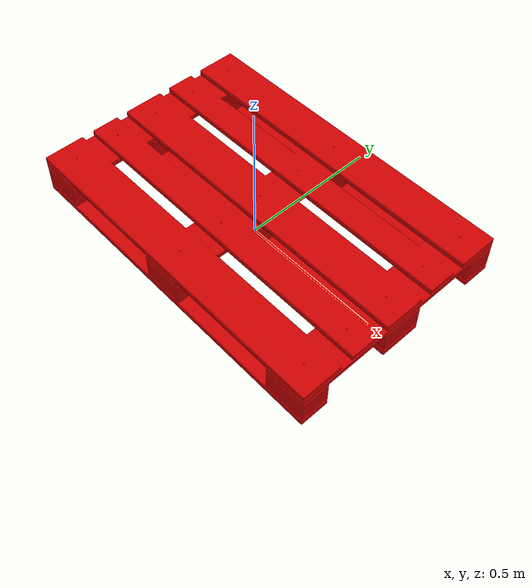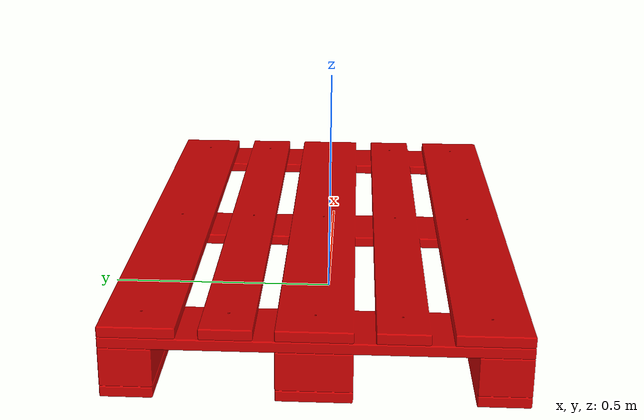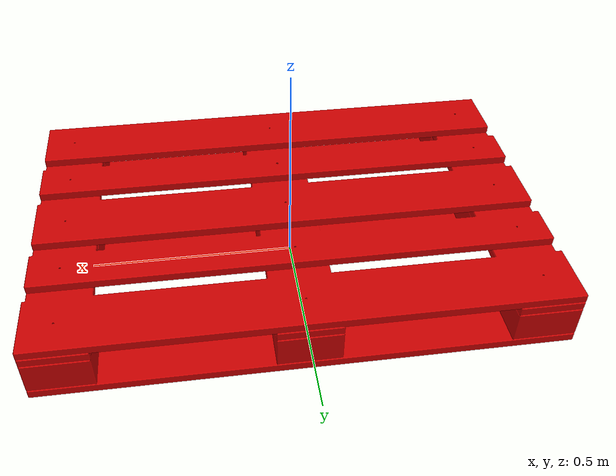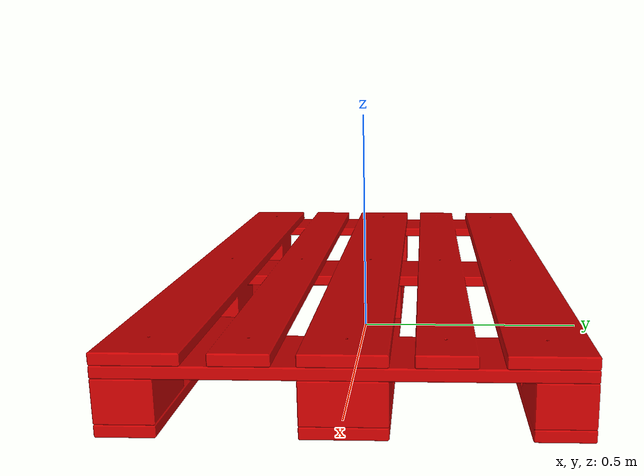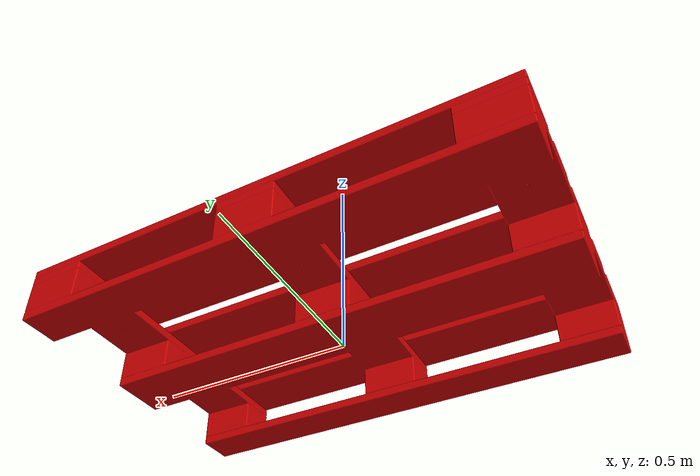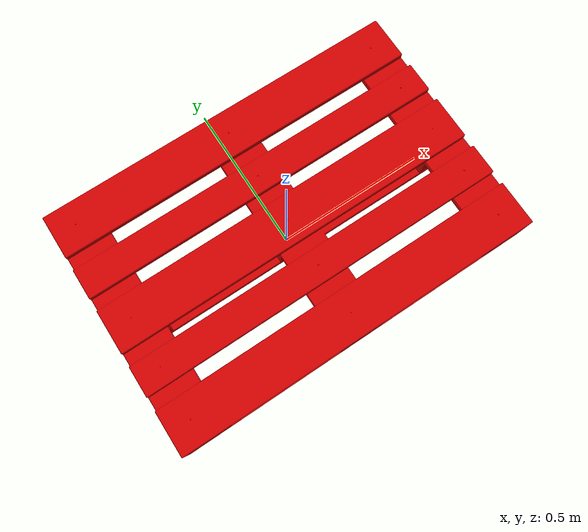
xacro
<?xml version="1.0"?>

<robot name="euro_pallet" xmlns:xacro="http://ros.org/wiki/xacro">

  <link name="base_link">
    <inertial>
      <mass value="2"/>
      <inertia ixx="1" ixy="0" ixz="0" iyy="1" iyz="0" izz="1" />
      <origin/>
    </inertial>

    <visual>
      <origin rpy="0 0 0" xyz="0 0 0"/>
      <geometry>
	<mesh
           filename="package://euro_pallet/meshes/EuroPallet.dae" scale = "1 1 1"/>
      </geometry>
     <material
        name="">
	<color rgba="0.8 0.0 0.0 1.0"/>
      </material>
    </visual>

    <collision>
      <origin rpy="0 0 1.57" xyz="0 0 0"/>
      <geometry>
	<!-- package://euro_pallet/meshes/euro_pallet.dae -->
	 <mesh
          filename="package://euro_pallet/meshes/euro_pallet.stl" scale = "0.001 0.001 0.001"/>
      </geometry>
      <contact_coefficients mu="1" kp="10.0" kd="10.0"/> -->
    </collision>
  </link>
</robot>
